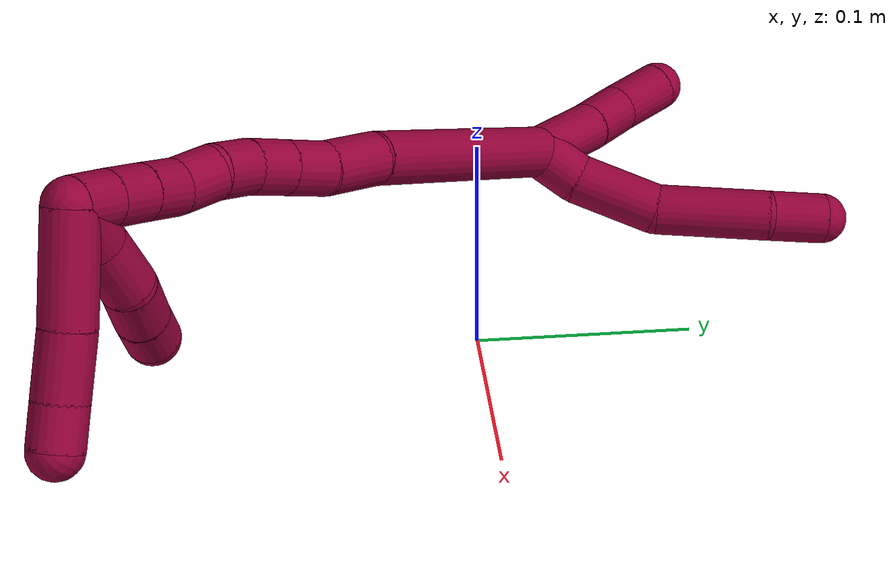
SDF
<sdf version="1.7">
 <world name="default">
  <model name="8">
   <static>0</static>
   <link name="8">
    <collision name="collision-cylinder-e_1_2_8">
     <pose>-0.004932 -0.005804 0.008952 0.57518 -0.432997 -0.129933</pose>
     <geometry><cylinder><radius>0.0125</radius><length>0.023506</length></cylinder></geometry>
     <surface>
      <friction><ode><mu>1.16</mu><mu2>1.16</mu2><slip1>0</slip1><slip2>0</slip2></ode></friction>
      <contact><ode><kp>1e+06</kp><kd>1</kd><max_vel>0</max_vel><min_depth>0.001</min_depth></ode></contact>
     </surface>
    </collision>
    <visual name="visual-cylinder-e_1_2_8">
     <pose>-0.004932 -0.005804 0.008952 0.57518 -0.432997 -0.129933</pose>
     <geometry><cylinder><radius>0.0125</radius><length>0.023506</length></cylinder></geometry>
     <material><ambient>0.584314 0 0.227451 1</ambient></material>
    </visual>
    <collision name="collision-cylinder-e_2_8_9">
     <pose>-0.02332 -0.020181 0.031602 0.559244 -0.694387 -0.207064</pose>
     <geometry><cylinder><radius>0.0125</radius><length>0.042059</length></cylinder></geometry>
     <surface>
      <friction><ode><mu>1.16</mu><mu2>1.16</mu2><slip1>0</slip1><slip2>0</slip2></ode></friction>
      <contact><ode><kp>1e+06</kp><kd>1</kd><max_vel>0</max_vel><min_depth>0.001</min_depth></ode></contact>
     </surface>
    </collision>
    <visual name="visual-cylinder-e_2_8_9">
     <pose>-0.02332 -0.020181 0.031602 0.559244 -0.694387 -0.207064</pose>
     <geometry><cylinder><radius>0.0125</radius><length>0.042059</length></cylinder></geometry>
     <material><ambient>0.584314 0 0.227451 1</ambient></material>
    </visual>
    <collision name="collision-cylinder-e_3_9_10">
     <pose>-0.059529 -0.033044 0.061282 0.26225 -0.941974 -0.134109</pose>
     <geometry><cylinder><radius>0.0125</radius><length>0.056267</length></cylinder></geometry>
     <surface>
      <friction><ode><mu>1.16</mu><mu2>1.16</mu2><slip1>0</slip1><slip2>0</slip2></ode></friction>
      <contact><ode><kp>1e+06</kp><kd>1</kd><max_vel>0</max_vel><min_depth>0.001</min_depth></ode></contact>
     </surface>
    </collision>
    <visual name="visual-cylinder-e_3_9_10">
     <pose>-0.059529 -0.033044 0.061282 0.26225 -0.941974 -0.134109</pose>
     <geometry><cylinder><radius>0.0125</radius><length>0.056267</length></cylinder></geometry>
     <material><ambient>0.584314 0 0.227451 1</ambient></material>
    </visual>
    <collision name="collision-cylinder-e_4_10_6">
     <pose>-0.092243 -0.037636 0.087215 0.03032 -0.785701 -0.012565</pose>
     <geometry><cylinder><radius>0.0125</radius><length>0.028168</length></cylinder></geometry>
     <surface>
      <friction><ode><mu>1.16</mu><mu2>1.16</mu2><slip1>0</slip1><slip2>0</slip2></ode></friction>
      <contact><ode><kp>1e+06</kp><kd>1</kd><max_vel>0</max_vel><min_depth>0.001</min_depth></ode></contact>
     </surface>
    </collision>
    <visual name="visual-cylinder-e_4_10_6">
     <pose>-0.092243 -0.037636 0.087215 0.03032 -0.785701 -0.012565</pose>
     <geometry><cylinder><radius>0.0125</radius><length>0.028168</length></cylinder></geometry>
     <material><ambient>0.584314 0 0.227451 1</ambient></material>
    </visual>
    <collision name="collision-cylinder-e_1_2_11">
     <pose>-0.007137 0.01292 0.015292 -0.701503 -0.342444 0.126364</pose>
     <geometry><cylinder><radius>0.0125</radius><length>0.042507</length></cylinder></geometry>
     <surface>
      <friction><ode><mu>1.16</mu><mu2>1.16</mu2><slip1>0</slip1><slip2>0</slip2></ode></friction>
      <contact><ode><kp>1e+06</kp><kd>1</kd><max_vel>0</max_vel><min_depth>0.001</min_depth></ode></contact>
     </surface>
    </collision>
    <visual name="visual-cylinder-e_1_2_11">
     <pose>-0.007137 0.01292 0.015292 -0.701503 -0.342444 0.126364</pose>
     <geometry><cylinder><radius>0.0125</radius><length>0.042507</length></cylinder></geometry>
     <material><ambient>0.584314 0 0.227451 1</ambient></material>
    </visual>
    <collision name="collision-cylinder-e_2_11_12">
     <pose>-0.018855 0.034979 0.040071 -0.76672 -0.334712 0.136058</pose>
     <geometry><cylinder><radius>0.0125</radius><length>0.027893</length></cylinder></geometry>
     <surface>
      <friction><ode><mu>1.16</mu><mu2>1.16</mu2><slip1>0</slip1><slip2>0</slip2></ode></friction>
      <contact><ode><kp>1e+06</kp><kd>1</kd><max_vel>0</max_vel><min_depth>0.001</min_depth></ode></contact>
     </surface>
    </collision>
    <visual name="visual-cylinder-e_2_11_12">
     <pose>-0.018855 0.034979 0.040071 -0.76672 -0.334712 0.136058</pose>
     <geometry><cylinder><radius>0.0125</radius><length>0.027893</length></cylinder></geometry>
     <material><ambient>0.584314 0 0.227451 1</ambient></material>
    </visual>
    <collision name="collision-cylinder-e_3_12_5">
     <pose>-0.03213 0.052376 0.058233 -0.760815 -0.627866 0.258217</pose>
     <geometry><cylinder><radius>0.0125</radius><length>0.0296</length></cylinder></geometry>
     <surface>
      <friction><ode><mu>1.16</mu><mu2>1.16</mu2><slip1>0</slip1><slip2>0</slip2></ode></friction>
      <contact><ode><kp>1e+06</kp><kd>1</kd><max_vel>0</max_vel><min_depth>0.001</min_depth></ode></contact>
     </surface>
    </collision>
    <visual name="visual-cylinder-e_3_12_5">
     <pose>-0.03213 0.052376 0.058233 -0.760815 -0.627866 0.258217</pose>
     <geometry><cylinder><radius>0.0125</radius><length>0.0296</length></cylinder></geometry>
     <material><ambient>0.584314 0 0.227451 1</ambient></material>
    </visual>
    <collision name="collision-cylinder-e_1_2_13">
     <pose>0.013521 -0.026576 -0.055623 2.69587 0.215915 0.892153</pose>
     <geometry><cylinder><radius>0.0125</radius><length>0.126222</length></cylinder></geometry>
     <surface>
      <friction><ode><mu>1.16</mu><mu2>1.16</mu2><slip1>0</slip1><slip2>0</slip2></ode></friction>
      <contact><ode><kp>1e+06</kp><kd>1</kd><max_vel>0</max_vel><min_depth>0.001</min_depth></ode></contact>
     </surface>
    </collision>
    <visual name="visual-cylinder-e_1_2_13">
     <pose>0.013521 -0.026576 -0.055623 2.69587 0.215915 0.892153</pose>
     <geometry><cylinder><radius>0.0125</radius><length>0.126222</length></cylinder></geometry>
     <material><ambient>0.584314 0 0.227451 1</ambient></material>
    </visual>
    <collision name="collision-cylinder-e_2_13_14">
     <pose>0.032687 -0.060169 -0.123621 2.62583 0.377765 1.25431</pose>
     <geometry><cylinder><radius>0.0125</radius><length>0.03061</length></cylinder></geometry>
     <surface>
      <friction><ode><mu>1.16</mu><mu2>1.16</mu2><slip1>0</slip1><slip2>0</slip2></ode></friction>
      <contact><ode><kp>1e+06</kp><kd>1</kd><max_vel>0</max_vel><min_depth>0.001</min_depth></ode></contact>
     </surface>
    </collision>
    <visual name="visual-cylinder-e_2_13_14">
     <pose>0.032687 -0.060169 -0.123621 2.62583 0.377765 1.25431</pose>
     <geometry><cylinder><radius>0.0125</radius><length>0.03061</length></cylinder></geometry>
     <material><ambient>0.584314 0 0.227451 1</ambient></material>
    </visual>
    <collision name="collision-cylinder-e_3_14_15">
     <pose>0.042129 -0.070521 -0.145908 2.81689 0.34825 1.6421</pose>
     <geometry><cylinder><radius>0.0125</radius><length>0.022252</length></cylinder></geometry>
     <surface>
      <friction><ode><mu>1.16</mu><mu2>1.16</mu2><slip1>0</slip1><slip2>0</slip2></ode></friction>
      <contact><ode><kp>1e+06</kp><kd>1</kd><max_vel>0</max_vel><min_depth>0.001</min_depth></ode></contact>
     </surface>
    </collision>
    <visual name="visual-cylinder-e_3_14_15">
     <pose>0.042129 -0.070521 -0.145908 2.81689 0.34825 1.6421</pose>
     <geometry><cylinder><radius>0.0125</radius><length>0.022252</length></cylinder></geometry>
     <material><ambient>0.584314 0 0.227451 1</ambient></material>
    </visual>
    <collision name="collision-cylinder-e_4_15_16">
     <pose>0.049329 -0.076903 -0.164792 2.81435 0.344815 1.62408</pose>
     <geometry><cylinder><radius>0.0125</radius><length>0.020136</length></cylinder></geometry>
     <surface>
      <friction><ode><mu>1.16</mu><mu2>1.16</mu2><slip1>0</slip1><slip2>0</slip2></ode></friction>
      <contact><ode><kp>1e+06</kp><kd>1</kd><max_vel>0</max_vel><min_depth>0.001</min_depth></ode></contact>
     </surface>
    </collision>
    <visual name="visual-cylinder-e_4_15_16">
     <pose>0.049329 -0.076903 -0.164792 2.81435 0.344815 1.62408</pose>
     <geometry><cylinder><radius>0.0125</radius><length>0.020136</length></cylinder></geometry>
     <material><ambient>0.584314 0 0.227451 1</ambient></material>
    </visual>
    <collision name="collision-cylinder-e_5_16_17">
     <pose>0.05553 -0.084732 -0.182258 2.62871 0.279466 0.984676</pose>
     <geometry><cylinder><radius>0.0125</radius><length>0.020283</length></cylinder></geometry>
     <surface>
      <friction><ode><mu>1.16</mu><mu2>1.16</mu2><slip1>0</slip1><slip2>0</slip2></ode></friction>
      <contact><ode><kp>1e+06</kp><kd>1</kd><max_vel>0</max_vel><min_depth>0.001</min_depth></ode></contact>
     </surface>
    </collision>
    <visual name="visual-cylinder-e_5_16_17">
     <pose>0.05553 -0.084732 -0.182258 2.62871 0.279466 0.984676</pose>
     <geometry><cylinder><radius>0.0125</radius><length>0.020283</length></cylinder></geometry>
     <material><ambient>0.584314 0 0.227451 1</ambient></material>
    </visual>
    <collision name="collision-cylinder-e_6_17_18">
     <pose>0.063224 -0.094876 -0.197761 2.48874 0.506642 1.3057</pose>
     <geometry><cylinder><radius>0.0125</radius><length>0.020183</length></cylinder></geometry>
     <surface>
      <friction><ode><mu>1.16</mu><mu2>1.16</mu2><slip1>0</slip1><slip2>0</slip2></ode></friction>
      <contact><ode><kp>1e+06</kp><kd>1</kd><max_vel>0</max_vel><min_depth>0.001</min_depth></ode></contact>
     </surface>
    </collision>
    <visual name="visual-cylinder-e_6_17_18">
     <pose>0.063224 -0.094876 -0.197761 2.48874 0.506642 1.3057</pose>
     <geometry><cylinder><radius>0.0125</radius><length>0.020183</length></cylinder></geometry>
     <material><ambient>0.584314 0 0.227451 1</ambient></material>
    </visual>
    <collision name="collision-cylinder-e_7_18_19">
     <pose>0.070299 -0.105248 -0.21331 2.6108 0.216505 0.760724</pose>
     <geometry><cylinder><radius>0.0125</radius><length>0.020278</length></cylinder></geometry>
     <surface>
      <friction><ode><mu>1.16</mu><mu2>1.16</mu2><slip1>0</slip1><slip2>0</slip2></ode></friction>
      <contact><ode><kp>1e+06</kp><kd>1</kd><max_vel>0</max_vel><min_depth>0.001</min_depth></ode></contact>
     </surface>
    </collision>
    <visual name="visual-cylinder-e_7_18_19">
     <pose>0.070299 -0.105248 -0.21331 2.6108 0.216505 0.760724</pose>
     <geometry><cylinder><radius>0.0125</radius><length>0.020278</length></cylinder></geometry>
     <material><ambient>0.584314 0 0.227451 1</ambient></material>
    </visual>
    <collision name="collision-cylinder-e_8_19_20">
     <pose>0.074774 -0.115256 -0.230214 2.60323 0.231553 0.797891</pose>
     <geometry><cylinder><radius>0.0125</radius><length>0.020019</length></cylinder></geometry>
     <surface>
      <friction><ode><mu>1.16</mu><mu2>1.16</mu2><slip1>0</slip1><slip2>0</slip2></ode></friction>
      <contact><ode><kp>1e+06</kp><kd>1</kd><max_vel>0</max_vel><min_depth>0.001</min_depth></ode></contact>
     </surface>
    </collision>
    <visual name="visual-cylinder-e_8_19_20">
     <pose>0.074774 -0.115256 -0.230214 2.60323 0.231553 0.797891</pose>
     <geometry><cylinder><radius>0.0125</radius><length>0.020019</length></cylinder></geometry>
     <material><ambient>0.584314 0 0.227451 1</ambient></material>
    </visual>
    <collision name="collision-cylinder-e_9_20_1">
     <pose>0.07936 -0.125414 -0.246841 2.5832 0.230732 0.768257</pose>
     <geometry><cylinder><radius>0.0125</radius><length>0.020018</length></cylinder></geometry>
     <surface>
      <friction><ode><mu>1.16</mu><mu2>1.16</mu2><slip1>0</slip1><slip2>0</slip2></ode></friction>
      <contact><ode><kp>1e+06</kp><kd>1</kd><max_vel>0</max_vel><min_depth>0.001</min_depth></ode></contact>
     </surface>
    </collision>
    <visual name="visual-cylinder-e_9_20_1">
     <pose>0.07936 -0.125414 -0.246841 2.5832 0.230732 0.768257</pose>
     <geometry><cylinder><radius>0.0125</radius><length>0.020018</length></cylinder></geometry>
     <material><ambient>0.584314 0 0.227451 1</ambient></material>
    </visual>
    <collision name="collision-cylinder-e_1_1_21">
     <pose>0.093354 -0.148897 -0.243013 0.987405 0.489885 0.26743</pose>
     <geometry><cylinder><radius>0.0125</radius><length>0.049755</length></cylinder></geometry>
     <surface>
      <friction><ode><mu>1.16</mu><mu2>1.16</mu2><slip1>0</slip1><slip2>0</slip2></ode></friction>
      <contact><ode><kp>1e+06</kp><kd>1</kd><max_vel>0</max_vel><min_depth>0.001</min_depth></ode></contact>
     </surface>
    </collision>
    <visual name="visual-cylinder-e_1_1_21">
     <pose>0.093354 -0.148897 -0.243013 0.987405 0.489885 0.26743</pose>
     <geometry><cylinder><radius>0.0125</radius><length>0.049755</length></cylinder></geometry>
     <material><ambient>0.584314 0 0.227451 1</ambient></material>
    </visual>
    <collision name="collision-cylinder-e_2_21_22">
     <pose>0.112755 -0.178489 -0.224637 1.06219 0.537704 0.320894</pose>
     <geometry><cylinder><radius>0.0125</radius><length>0.030051</length></cylinder></geometry>
     <surface>
      <friction><ode><mu>1.16</mu><mu2>1.16</mu2><slip1>0</slip1><slip2>0</slip2></ode></friction>
      <contact><ode><kp>1e+06</kp><kd>1</kd><max_vel>0</max_vel><min_depth>0.001</min_depth></ode></contact>
     </surface>
    </collision>
    <visual name="visual-cylinder-e_2_21_22">
     <pose>0.112755 -0.178489 -0.224637 1.06219 0.537704 0.320894</pose>
     <geometry><cylinder><radius>0.0125</radius><length>0.030051</length></cylinder></geometry>
     <material><ambient>0.584314 0 0.227451 1</ambient></material>
    </visual>
    <collision name="collision-cylinder-e_3_22_4">
     <pose>0.125187 -0.19783 -0.214556 1.13105 0.488218 0.313569</pose>
     <geometry><cylinder><radius>0.0125</radius><length>0.020194</length></cylinder></geometry>
     <surface>
      <friction><ode><mu>1.16</mu><mu2>1.16</mu2><slip1>0</slip1><slip2>0</slip2></ode></friction>
      <contact><ode><kp>1e+06</kp><kd>1</kd><max_vel>0</max_vel><min_depth>0.001</min_depth></ode></contact>
     </surface>
    </collision>
    <visual name="visual-cylinder-e_3_22_4">
     <pose>0.125187 -0.19783 -0.214556 1.13105 0.488218 0.313569</pose>
     <geometry><cylinder><radius>0.0125</radius><length>0.020194</length></cylinder></geometry>
     <material><ambient>0.584314 0 0.227451 1</ambient></material>
    </visual>
    <collision name="collision-cylinder-e_1_1_23">
     <pose>0.085463 -0.131516 -0.242687 0.075567 0.297221 0.011319</pose>
     <geometry><cylinder><radius>0.0125</radius><length>0.02605</length></cylinder></geometry>
     <surface>
      <friction><ode><mu>1.16</mu><mu2>1.16</mu2><slip1>0</slip1><slip2>0</slip2></ode></friction>
      <contact><ode><kp>1e+06</kp><kd>1</kd><max_vel>0</max_vel><min_depth>0.001</min_depth></ode></contact>
     </surface>
    </collision>
    <visual name="visual-cylinder-e_1_1_23">
     <pose>0.085463 -0.131516 -0.242687 0.075567 0.297221 0.011319</pose>
     <geometry><cylinder><radius>0.0125</radius><length>0.02605</length></cylinder></geometry>
     <material><ambient>0.584314 0 0.227451 1</ambient></material>
    </visual>
    <collision name="collision-cylinder-e_2_23_24">
     <pose>0.092973 -0.13455 -0.216385 0.149648 0.257378 0.019401</pose>
     <geometry><cylinder><radius>0.0125</radius><length>0.029036</length></cylinder></geometry>
     <surface>
      <friction><ode><mu>1.16</mu><mu2>1.16</mu2><slip1>0</slip1><slip2>0</slip2></ode></friction>
      <contact><ode><kp>1e+06</kp><kd>1</kd><max_vel>0</max_vel><min_depth>0.001</min_depth></ode></contact>
     </surface>
    </collision>
    <visual name="visual-cylinder-e_2_23_24">
     <pose>0.092973 -0.13455 -0.216385 0.149648 0.257378 0.019401</pose>
     <geometry><cylinder><radius>0.0125</radius><length>0.029036</length></cylinder></geometry>
     <material><ambient>0.584314 0 0.227451 1</ambient></material>
    </visual>
    <collision name="collision-cylinder-e_3_24_25">
     <pose>0.102391 -0.136426 -0.191532 -0.019742 0.480687 -0.004839</pose>
     <geometry><cylinder><radius>0.0125</radius><length>0.024751</length></cylinder></geometry>
     <surface>
      <friction><ode><mu>1.16</mu><mu2>1.16</mu2><slip1>0</slip1><slip2>0</slip2></ode></friction>
      <contact><ode><kp>1e+06</kp><kd>1</kd><max_vel>0</max_vel><min_depth>0.001</min_depth></ode></contact>
     </surface>
    </collision>
    <visual name="visual-cylinder-e_3_24_25">
     <pose>0.102391 -0.136426 -0.191532 -0.019742 0.480687 -0.004839</pose>
     <geometry><cylinder><radius>0.0125</radius><length>0.024751</length></cylinder></geometry>
     <material><ambient>0.584314 0 0.227451 1</ambient></material>
    </visual>
    <collision name="collision-cylinder-e_4_25_3">
     <pose>0.112544 -0.135343 -0.171547 -0.095865 0.455025 -0.022211</pose>
     <geometry><cylinder><radius>0.0125</radius><length>0.020163</length></cylinder></geometry>
     <surface>
      <friction><ode><mu>1.16</mu><mu2>1.16</mu2><slip1>0</slip1><slip2>0</slip2></ode></friction>
      <contact><ode><kp>1e+06</kp><kd>1</kd><max_vel>0</max_vel><min_depth>0.001</min_depth></ode></contact>
     </surface>
    </collision>
    <visual name="visual-cylinder-e_4_25_3">
     <pose>0.112544 -0.135343 -0.171547 -0.095865 0.455025 -0.022211</pose>
     <geometry><cylinder><radius>0.0125</radius><length>0.020163</length></cylinder></geometry>
     <material><ambient>0.584314 0 0.227451 1</ambient></material>
    </visual>
    <collision name="collision-sphere-3">
     <pose>0.116975 -0.134476 -0.162533 0 -0 0</pose>
     <geometry><sphere><radius>0.0125</radius></sphere></geometry>
     <surface>
      <friction><ode><mu>1.16</mu><mu2>1.16</mu2><slip1>0</slip1><slip2>0</slip2></ode></friction>
      <contact><ode><kp>1e+06</kp><kd>1</kd><max_vel>0</max_vel><min_depth>0.001</min_depth></ode></contact>
     </surface>
    </collision>
    <visual name="visual-sphere-3">
     <pose>0.116975 -0.134476 -0.162533 0 -0 0</pose>
     <geometry><sphere><radius>0.0125</radius></sphere></geometry>
     <material><ambient>0.584314 0 0.227451 1</ambient></material>
    </visual>
    <collision name="collision-sphere-25">
     <pose>0.108113 -0.13621 -0.180561 0 -0 0</pose>
     <geometry><sphere><radius>0.0125</radius></sphere></geometry>
     <surface>
      <friction><ode><mu>1.16</mu><mu2>1.16</mu2><slip1>0</slip1><slip2>0</slip2></ode></friction>
      <contact><ode><kp>1e+06</kp><kd>1</kd><max_vel>0</max_vel><min_depth>0.001</min_depth></ode></contact>
     </surface>
    </collision>
    <visual name="visual-sphere-25">
     <pose>0.108113 -0.13621 -0.180561 0 -0 0</pose>
     <geometry><sphere><radius>0.0125</radius></sphere></geometry>
     <material><ambient>0.584314 0 0.227451 1</ambient></material>
    </visual>
    <collision name="collision-sphere-24">
     <pose>0.096669 -0.136643 -0.202502 0 -0 0</pose>
     <geometry><sphere><radius>0.0125</radius></sphere></geometry>
     <surface>
      <friction><ode><mu>1.16</mu><mu2>1.16</mu2><slip1>0</slip1><slip2>0</slip2></ode></friction>
      <contact><ode><kp>1e+06</kp><kd>1</kd><max_vel>0</max_vel><min_depth>0.001</min_depth></ode></contact>
     </surface>
    </collision>
    <visual name="visual-sphere-24">
     <pose>0.096669 -0.136643 -0.202502 0 -0 0</pose>
     <geometry><sphere><radius>0.0125</radius></sphere></geometry>
     <material><ambient>0.584314 0 0.227451 1</ambient></material>
    </visual>
    <collision name="collision-sphere-23">
     <pose>0.089278 -0.132457 -0.230269 0 -0 0</pose>
     <geometry><sphere><radius>0.0125</radius></sphere></geometry>
     <surface>
      <friction><ode><mu>1.16</mu><mu2>1.16</mu2><slip1>0</slip1><slip2>0</slip2></ode></friction>
      <contact><ode><kp>1e+06</kp><kd>1</kd><max_vel>0</max_vel><min_depth>0.001</min_depth></ode></contact>
     </surface>
    </collision>
    <visual name="visual-sphere-23">
     <pose>0.089278 -0.132457 -0.230269 0 -0 0</pose>
     <geometry><sphere><radius>0.0125</radius></sphere></geometry>
     <material><ambient>0.584314 0 0.227451 1</ambient></material>
    </visual>
    <collision name="collision-sphere-4">
     <pose>0.129923 -0.205899 -0.21076 0 -0 0</pose>
     <geometry><sphere><radius>0.0125</radius></sphere></geometry>
     <surface>
      <friction><ode><mu>1.16</mu><mu2>1.16</mu2><slip1>0</slip1><slip2>0</slip2></ode></friction>
      <contact><ode><kp>1e+06</kp><kd>1</kd><max_vel>0</max_vel><min_depth>0.001</min_depth></ode></contact>
     </surface>
    </collision>
    <visual name="visual-sphere-4">
     <pose>0.129923 -0.205899 -0.21076 0 -0 0</pose>
     <geometry><sphere><radius>0.0125</radius></sphere></geometry>
     <material><ambient>0.584314 0 0.227451 1</ambient></material>
    </visual>
    <collision name="collision-sphere-22">
     <pose>0.120451 -0.189761 -0.218352 0 -0 0</pose>
     <geometry><sphere><radius>0.0125</radius></sphere></geometry>
     <surface>
      <friction><ode><mu>1.16</mu><mu2>1.16</mu2><slip1>0</slip1><slip2>0</slip2></ode></friction>
      <contact><ode><kp>1e+06</kp><kd>1</kd><max_vel>0</max_vel><min_depth>0.001</min_depth></ode></contact>
     </surface>
    </collision>
    <visual name="visual-sphere-22">
     <pose>0.120451 -0.189761 -0.218352 0 -0 0</pose>
     <geometry><sphere><radius>0.0125</radius></sphere></geometry>
     <material><ambient>0.584314 0 0.227451 1</ambient></material>
    </visual>
    <collision name="collision-sphere-21">
     <pose>0.10506 -0.167218 -0.230921 0 -0 0</pose>
     <geometry><sphere><radius>0.0125</radius></sphere></geometry>
     <surface>
      <friction><ode><mu>1.16</mu><mu2>1.16</mu2><slip1>0</slip1><slip2>0</slip2></ode></friction>
      <contact><ode><kp>1e+06</kp><kd>1</kd><max_vel>0</max_vel><min_depth>0.001</min_depth></ode></contact>
     </surface>
    </collision>
    <visual name="visual-sphere-21">
     <pose>0.10506 -0.167218 -0.230921 0 -0 0</pose>
     <geometry><sphere><radius>0.0125</radius></sphere></geometry>
     <material><ambient>0.584314 0 0.227451 1</ambient></material>
    </visual>
    <collision name="collision-sphere-1">
     <pose>0.081649 -0.130576 -0.255105 0 -0 0</pose>
     <geometry><sphere><radius>0.0125</radius></sphere></geometry>
     <surface>
      <friction><ode><mu>1.16</mu><mu2>1.16</mu2><slip1>0</slip1><slip2>0</slip2></ode></friction>
      <contact><ode><kp>1e+06</kp><kd>1</kd><max_vel>0</max_vel><min_depth>0.001</min_depth></ode></contact>
     </surface>
    </collision>
    <visual name="visual-sphere-1">
     <pose>0.081649 -0.130576 -0.255105 0 -0 0</pose>
     <geometry><sphere><radius>0.0125</radius></sphere></geometry>
     <material><ambient>0.584314 0 0.227451 1</ambient></material>
    </visual>
    <collision name="collision-sphere-11">
     <pose>-0.014273 0.02584 0.030585 0 -0 0</pose>
     <geometry><sphere><radius>0.0125</radius></sphere></geometry>
     <surface>
      <friction><ode><mu>1.16</mu><mu2>1.16</mu2><slip1>0</slip1><slip2>0</slip2></ode></friction>
      <contact><ode><kp>1e+06</kp><kd>1</kd><max_vel>0</max_vel><min_depth>0.001</min_depth></ode></contact>
     </surface>
    </collision>
    <visual name="visual-sphere-11">
     <pose>-0.014273 0.02584 0.030585 0 -0 0</pose>
     <geometry><sphere><radius>0.0125</radius></sphere></geometry>
     <material><ambient>0.584314 0 0.227451 1</ambient></material>
    </visual>
    <collision name="collision-sphere-6">
     <pose>-0.102205 -0.037938 0.097167 0 -0 0</pose>
     <geometry><sphere><radius>0.0125</radius></sphere></geometry>
     <surface>
      <friction><ode><mu>1.16</mu><mu2>1.16</mu2><slip1>0</slip1><slip2>0</slip2></ode></friction>
      <contact><ode><kp>1e+06</kp><kd>1</kd><max_vel>0</max_vel><min_depth>0.001</min_depth></ode></contact>
     </surface>
    </collision>
    <visual name="visual-sphere-6">
     <pose>-0.102205 -0.037938 0.097167 0 -0 0</pose>
     <geometry><sphere><radius>0.0125</radius></sphere></geometry>
     <material><ambient>0.584314 0 0.227451 1</ambient></material>
    </visual>
    <collision name="collision-sphere-10">
     <pose>-0.082281 -0.037334 0.077264 0 -0 0</pose>
     <geometry><sphere><radius>0.0125</radius></sphere></geometry>
     <surface>
      <friction><ode><mu>1.16</mu><mu2>1.16</mu2><slip1>0</slip1><slip2>0</slip2></ode></friction>
      <contact><ode><kp>1e+06</kp><kd>1</kd><max_vel>0</max_vel><min_depth>0.001</min_depth></ode></contact>
     </surface>
    </collision>
    <visual name="visual-sphere-10">
     <pose>-0.082281 -0.037334 0.077264 0 -0 0</pose>
     <geometry><sphere><radius>0.0125</radius></sphere></geometry>
     <material><ambient>0.584314 0 0.227451 1</ambient></material>
    </visual>
    <collision name="collision-sphere-9">
     <pose>-0.036777 -0.028754 0.0453 0 -0 0</pose>
     <geometry><sphere><radius>0.0125</radius></sphere></geometry>
     <surface>
      <friction><ode><mu>1.16</mu><mu2>1.16</mu2><slip1>0</slip1><slip2>0</slip2></ode></friction>
      <contact><ode><kp>1e+06</kp><kd>1</kd><max_vel>0</max_vel><min_depth>0.001</min_depth></ode></contact>
     </surface>
    </collision>
    <visual name="visual-sphere-9">
     <pose>-0.036777 -0.028754 0.0453 0 -0 0</pose>
     <geometry><sphere><radius>0.0125</radius></sphere></geometry>
     <material><ambient>0.584314 0 0.227451 1</ambient></material>
    </visual>
    <collision name="collision-sphere-2">
     <geometry><sphere><radius>0.0125</radius></sphere></geometry>
     <surface>
      <friction><ode><mu>1.16</mu><mu2>1.16</mu2><slip1>0</slip1><slip2>0</slip2></ode></friction>
      <contact><ode><kp>1e+06</kp><kd>1</kd><max_vel>0</max_vel><min_depth>0.001</min_depth></ode></contact>
     </surface>
    </collision>
    <visual name="visual-sphere-2">
     <geometry><sphere><radius>0.0125</radius></sphere></geometry>
     <material><ambient>0.584314 0 0.227451 1</ambient></material>
    </visual>
    <collision name="collision-sphere-19">
     <pose>0.072477 -0.110261 -0.22185 0 -0 0</pose>
     <geometry><sphere><radius>0.0125</radius></sphere></geometry>
     <surface>
      <friction><ode><mu>1.16</mu><mu2>1.16</mu2><slip1>0</slip1><slip2>0</slip2></ode></friction>
      <contact><ode><kp>1e+06</kp><kd>1</kd><max_vel>0</max_vel><min_depth>0.001</min_depth></ode></contact>
     </surface>
    </collision>
    <visual name="visual-sphere-19">
     <pose>0.072477 -0.110261 -0.22185 0 -0 0</pose>
     <geometry><sphere><radius>0.0125</radius></sphere></geometry>
     <material><ambient>0.584314 0 0.227451 1</ambient></material>
    </visual>
    <collision name="collision-sphere-8">
     <pose>-0.009863 -0.011607 0.017904 0 -0 0</pose>
     <geometry><sphere><radius>0.0125</radius></sphere></geometry>
     <surface>
      <friction><ode><mu>1.16</mu><mu2>1.16</mu2><slip1>0</slip1><slip2>0</slip2></ode></friction>
      <contact><ode><kp>1e+06</kp><kd>1</kd><max_vel>0</max_vel><min_depth>0.001</min_depth></ode></contact>
     </surface>
    </collision>
    <visual name="visual-sphere-8">
     <pose>-0.009863 -0.011607 0.017904 0 -0 0</pose>
     <geometry><sphere><radius>0.0125</radius></sphere></geometry>
     <material><ambient>0.584314 0 0.227451 1</ambient></material>
    </visual>
    <collision name="collision-sphere-12">
     <pose>-0.023436 0.044117 0.049558 0 -0 0</pose>
     <geometry><sphere><radius>0.0125</radius></sphere></geometry>
     <surface>
      <friction><ode><mu>1.16</mu><mu2>1.16</mu2><slip1>0</slip1><slip2>0</slip2></ode></friction>
      <contact><ode><kp>1e+06</kp><kd>1</kd><max_vel>0</max_vel><min_depth>0.001</min_depth></ode></contact>
     </surface>
    </collision>
    <visual name="visual-sphere-12">
     <pose>-0.023436 0.044117 0.049558 0 -0 0</pose>
     <geometry><sphere><radius>0.0125</radius></sphere></geometry>
     <material><ambient>0.584314 0 0.227451 1</ambient></material>
    </visual>
    <collision name="collision-sphere-5">
     <pose>-0.040824 0.060634 0.066908 0 -0 0</pose>
     <geometry><sphere><radius>0.0125</radius></sphere></geometry>
     <surface>
      <friction><ode><mu>1.16</mu><mu2>1.16</mu2><slip1>0</slip1><slip2>0</slip2></ode></friction>
      <contact><ode><kp>1e+06</kp><kd>1</kd><max_vel>0</max_vel><min_depth>0.001</min_depth></ode></contact>
     </surface>
    </collision>
    <visual name="visual-sphere-5">
     <pose>-0.040824 0.060634 0.066908 0 -0 0</pose>
     <geometry><sphere><radius>0.0125</radius></sphere></geometry>
     <material><ambient>0.584314 0 0.227451 1</ambient></material>
    </visual>
    <collision name="collision-sphere-13">
     <pose>0.027042 -0.053152 -0.111245 0 -0 0</pose>
     <geometry><sphere><radius>0.0125</radius></sphere></geometry>
     <surface>
      <friction><ode><mu>1.16</mu><mu2>1.16</mu2><slip1>0</slip1><slip2>0</slip2></ode></friction>
      <contact><ode><kp>1e+06</kp><kd>1</kd><max_vel>0</max_vel><min_depth>0.001</min_depth></ode></contact>
     </surface>
    </collision>
    <visual name="visual-sphere-13">
     <pose>0.027042 -0.053152 -0.111245 0 -0 0</pose>
     <geometry><sphere><radius>0.0125</radius></sphere></geometry>
     <material><ambient>0.584314 0 0.227451 1</ambient></material>
    </visual>
    <collision name="collision-sphere-14">
     <pose>0.038332 -0.067185 -0.135996 0 -0 0</pose>
     <geometry><sphere><radius>0.0125</radius></sphere></geometry>
     <surface>
      <friction><ode><mu>1.16</mu><mu2>1.16</mu2><slip1>0</slip1><slip2>0</slip2></ode></friction>
      <contact><ode><kp>1e+06</kp><kd>1</kd><max_vel>0</max_vel><min_depth>0.001</min_depth></ode></contact>
     </surface>
    </collision>
    <visual name="visual-sphere-14">
     <pose>0.038332 -0.067185 -0.135996 0 -0 0</pose>
     <geometry><sphere><radius>0.0125</radius></sphere></geometry>
     <material><ambient>0.584314 0 0.227451 1</ambient></material>
    </visual>
    <collision name="collision-sphere-15">
     <pose>0.045926 -0.073858 -0.155819 0 -0 0</pose>
     <geometry><sphere><radius>0.0125</radius></sphere></geometry>
     <surface>
      <friction><ode><mu>1.16</mu><mu2>1.16</mu2><slip1>0</slip1><slip2>0</slip2></ode></friction>
      <contact><ode><kp>1e+06</kp><kd>1</kd><max_vel>0</max_vel><min_depth>0.001</min_depth></ode></contact>
     </surface>
    </collision>
    <visual name="visual-sphere-15">
     <pose>0.045926 -0.073858 -0.155819 0 -0 0</pose>
     <geometry><sphere><radius>0.0125</radius></sphere></geometry>
     <material><ambient>0.584314 0 0.227451 1</ambient></material>
    </visual>
    <collision name="collision-sphere-16">
     <pose>0.052732 -0.079949 -0.173764 0 -0 0</pose>
     <geometry><sphere><radius>0.0125</radius></sphere></geometry>
     <surface>
      <friction><ode><mu>1.16</mu><mu2>1.16</mu2><slip1>0</slip1><slip2>0</slip2></ode></friction>
      <contact><ode><kp>1e+06</kp><kd>1</kd><max_vel>0</max_vel><min_depth>0.001</min_depth></ode></contact>
     </surface>
    </collision>
    <visual name="visual-sphere-16">
     <pose>0.052732 -0.079949 -0.173764 0 -0 0</pose>
     <geometry><sphere><radius>0.0125</radius></sphere></geometry>
     <material><ambient>0.584314 0 0.227451 1</ambient></material>
    </visual>
    <collision name="collision-sphere-17">
     <pose>0.058327 -0.089516 -0.190752 0 -0 0</pose>
     <geometry><sphere><radius>0.0125</radius></sphere></geometry>
     <surface>
      <friction><ode><mu>1.16</mu><mu2>1.16</mu2><slip1>0</slip1><slip2>0</slip2></ode></friction>
      <contact><ode><kp>1e+06</kp><kd>1</kd><max_vel>0</max_vel><min_depth>0.001</min_depth></ode></contact>
     </surface>
    </collision>
    <visual name="visual-sphere-17">
     <pose>0.058327 -0.089516 -0.190752 0 -0 0</pose>
     <geometry><sphere><radius>0.0125</radius></sphere></geometry>
     <material><ambient>0.584314 0 0.227451 1</ambient></material>
    </visual>
    <collision name="collision-sphere-18">
     <pose>0.068121 -0.100236 -0.20477 0 -0 0</pose>
     <geometry><sphere><radius>0.0125</radius></sphere></geometry>
     <surface>
      <friction><ode><mu>1.16</mu><mu2>1.16</mu2><slip1>0</slip1><slip2>0</slip2></ode></friction>
      <contact><ode><kp>1e+06</kp><kd>1</kd><max_vel>0</max_vel><min_depth>0.001</min_depth></ode></contact>
     </surface>
    </collision>
    <visual name="visual-sphere-18">
     <pose>0.068121 -0.100236 -0.20477 0 -0 0</pose>
     <geometry><sphere><radius>0.0125</radius></sphere></geometry>
     <material><ambient>0.584314 0 0.227451 1</ambient></material>
    </visual>
    <collision name="collision-sphere-20">
     <pose>0.077071 -0.120251 -0.238578 0 -0 0</pose>
     <geometry><sphere><radius>0.0125</radius></sphere></geometry>
     <surface>
      <friction><ode><mu>1.16</mu><mu2>1.16</mu2><slip1>0</slip1><slip2>0</slip2></ode></friction>
      <contact><ode><kp>1e+06</kp><kd>1</kd><max_vel>0</max_vel><min_depth>0.001</min_depth></ode></contact>
     </surface>
    </collision>
    <visual name="visual-sphere-20">
     <pose>0.077071 -0.120251 -0.238578 0 -0 0</pose>
     <geometry><sphere><radius>0.0125</radius></sphere></geometry>
     <material><ambient>0.584314 0 0.227451 1</ambient></material>
    </visual>
    <inertial>
     <pose>0.030689 -0.066579 -0.095968 0 -0 0</pose>
     <mass>0.75</mass>
     <inertia>
      <ixx>0.000314</ixx>
      <ixy>0</ixy>
      <ixz>0</ixz>
      <iyy>0.000103</iyy>
      <iyz>0</iyz>
      <izz>6.8e-05</izz>
     </inertia>
    </inertial>
   </link>
   <pose>-0.105611 0.04207 0.043835 2.57745 0.557223 -1.87921</pose>
  </model>
 </world>
</sdf>
